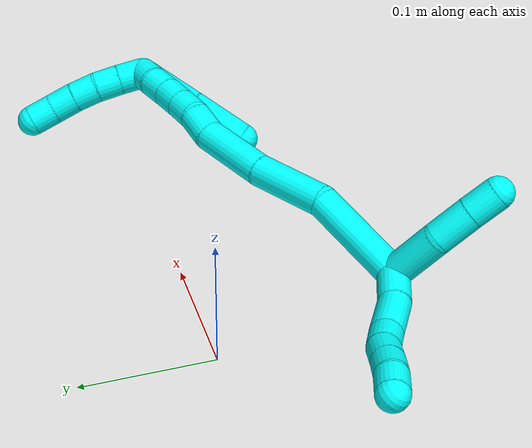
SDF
<sdf version="1.7">
 <world name="default">
  <model name="3">
   <static>0</static>
   <link name="3">
    <collision name="collision-cylinder-e_1_2_8">
     <pose>-0.015247 -0.001448 -0.000379 1.82695 -1.47293 -1.73109</pose>
     <geometry><cylinder><radius>0.0125</radius><length>0.03064</length></cylinder></geometry>
     <surface>
      <friction><ode><mu>1.16</mu><mu2>1.16</mu2><slip1>0</slip1><slip2>0</slip2></ode></friction>
      <contact><ode><kp>1e+06</kp><kd>1</kd><max_vel>0</max_vel><min_depth>0.001</min_depth></ode></contact>
     </surface>
    </collision>
    <visual name="visual-cylinder-e_1_2_8">
     <pose>-0.015247 -0.001448 -0.000379 1.82695 -1.47293 -1.73109</pose>
     <geometry><cylinder><radius>0.0125</radius><length>0.03064</length></cylinder></geometry>
     <material><ambient>0.003922 1 0.996078 1</ambient></material>
    </visual>
    <collision name="collision-cylinder-e_2_8_9">
     <pose>-0.048238 -8.5e-05 -0.001263 -1.74837 -1.41118 1.58901</pose>
     <geometry><cylinder><radius>0.0125</radius><length>0.035945</length></cylinder></geometry>
     <surface>
      <friction><ode><mu>1.16</mu><mu2>1.16</mu2><slip1>0</slip1><slip2>0</slip2></ode></friction>
      <contact><ode><kp>1e+06</kp><kd>1</kd><max_vel>0</max_vel><min_depth>0.001</min_depth></ode></contact>
     </surface>
    </collision>
    <visual name="visual-cylinder-e_2_8_9">
     <pose>-0.048238 -8.5e-05 -0.001263 -1.74837 -1.41118 1.58901</pose>
     <geometry><cylinder><radius>0.0125</radius><length>0.035945</length></cylinder></geometry>
     <material><ambient>0.003922 1 0.996078 1</ambient></material>
    </visual>
    <collision name="collision-cylinder-e_3_9_10">
     <pose>-0.076235 0.004785 -0.000273 -0.942749 -1.32768 0.75881</pose>
     <geometry><cylinder><radius>0.0125</radius><length>0.021128</length></cylinder></geometry>
     <surface>
      <friction><ode><mu>1.16</mu><mu2>1.16</mu2><slip1>0</slip1><slip2>0</slip2></ode></friction>
      <contact><ode><kp>1e+06</kp><kd>1</kd><max_vel>0</max_vel><min_depth>0.001</min_depth></ode></contact>
     </surface>
    </collision>
    <visual name="visual-cylinder-e_3_9_10">
     <pose>-0.076235 0.004785 -0.000273 -0.942749 -1.32768 0.75881</pose>
     <geometry><cylinder><radius>0.0125</radius><length>0.021128</length></cylinder></geometry>
     <material><ambient>0.003922 1 0.996078 1</ambient></material>
    </visual>
    <collision name="collision-cylinder-e_4_10_11">
     <pose>-0.096224 0.007307 0.004733 -0.131348 -1.22178 0.092043</pose>
     <geometry><cylinder><radius>0.0125</radius><length>0.02072</length></cylinder></geometry>
     <surface>
      <friction><ode><mu>1.16</mu><mu2>1.16</mu2><slip1>0</slip1><slip2>0</slip2></ode></friction>
      <contact><ode><kp>1e+06</kp><kd>1</kd><max_vel>0</max_vel><min_depth>0.001</min_depth></ode></contact>
     </surface>
    </collision>
    <visual name="visual-cylinder-e_4_10_11">
     <pose>-0.096224 0.007307 0.004733 -0.131348 -1.22178 0.092043</pose>
     <geometry><cylinder><radius>0.0125</radius><length>0.02072</length></cylinder></geometry>
     <material><ambient>0.003922 1 0.996078 1</ambient></material>
    </visual>
    <collision name="collision-cylinder-e_5_11_12">
     <pose>-0.115831 0.008532 0.011513 -0.228827 -1.24316 0.164256</pose>
     <geometry><cylinder><radius>0.0125</radius><length>0.020854</length></cylinder></geometry>
     <surface>
      <friction><ode><mu>1.16</mu><mu2>1.16</mu2><slip1>0</slip1><slip2>0</slip2></ode></friction>
      <contact><ode><kp>1e+06</kp><kd>1</kd><max_vel>0</max_vel><min_depth>0.001</min_depth></ode></contact>
     </surface>
    </collision>
    <visual name="visual-cylinder-e_5_11_12">
     <pose>-0.115831 0.008532 0.011513 -0.228827 -1.24316 0.164256</pose>
     <geometry><cylinder><radius>0.0125</radius><length>0.020854</length></cylinder></geometry>
     <material><ambient>0.003922 1 0.996078 1</ambient></material>
    </visual>
    <collision name="collision-cylinder-e_6_12_6">
     <pose>-0.13596 0.009511 0.016203 -0.152105 -1.43152 0.132331</pose>
     <geometry><cylinder><radius>0.0125</radius><length>0.020713</length></cylinder></geometry>
     <surface>
      <friction><ode><mu>1.16</mu><mu2>1.16</mu2><slip1>0</slip1><slip2>0</slip2></ode></friction>
      <contact><ode><kp>1e+06</kp><kd>1</kd><max_vel>0</max_vel><min_depth>0.001</min_depth></ode></contact>
     </surface>
    </collision>
    <visual name="visual-cylinder-e_6_12_6">
     <pose>-0.13596 0.009511 0.016203 -0.152105 -1.43152 0.132331</pose>
     <geometry><cylinder><radius>0.0125</radius><length>0.020713</length></cylinder></geometry>
     <material><ambient>0.003922 1 0.996078 1</ambient></material>
    </visual>
    <collision name="collision-cylinder-e_1_2_13">
     <pose>0.000148 -0.001979 0.022681 0.087043 0.006502 0.000283</pose>
     <geometry><cylinder><radius>0.0125</radius><length>0.045536</length></cylinder></geometry>
     <surface>
      <friction><ode><mu>1.16</mu><mu2>1.16</mu2><slip1>0</slip1><slip2>0</slip2></ode></friction>
      <contact><ode><kp>1e+06</kp><kd>1</kd><max_vel>0</max_vel><min_depth>0.001</min_depth></ode></contact>
     </surface>
    </collision>
    <visual name="visual-cylinder-e_1_2_13">
     <pose>0.000148 -0.001979 0.022681 0.087043 0.006502 0.000283</pose>
     <geometry><cylinder><radius>0.0125</radius><length>0.045536</length></cylinder></geometry>
     <material><ambient>0.003922 1 0.996078 1</ambient></material>
    </visual>
    <collision name="collision-cylinder-e_2_13_14">
     <pose>0.004242 -0.007627 0.059653 0.251253 0.261345 0.033192</pose>
     <geometry><cylinder><radius>0.0125</radius><length>0.030545</length></cylinder></geometry>
     <surface>
      <friction><ode><mu>1.16</mu><mu2>1.16</mu2><slip1>0</slip1><slip2>0</slip2></ode></friction>
      <contact><ode><kp>1e+06</kp><kd>1</kd><max_vel>0</max_vel><min_depth>0.001</min_depth></ode></contact>
     </surface>
    </collision>
    <visual name="visual-cylinder-e_2_13_14">
     <pose>0.004242 -0.007627 0.059653 0.251253 0.261345 0.033192</pose>
     <geometry><cylinder><radius>0.0125</radius><length>0.030545</length></cylinder></geometry>
     <material><ambient>0.003922 1 0.996078 1</ambient></material>
    </visual>
    <collision name="collision-cylinder-e_3_14_5">
     <pose>0.011434 -0.01458 0.084976 0.289465 0.274808 0.040302</pose>
     <geometry><cylinder><radius>0.0125</radius><length>0.023919</length></cylinder></geometry>
     <surface>
      <friction><ode><mu>1.16</mu><mu2>1.16</mu2><slip1>0</slip1><slip2>0</slip2></ode></friction>
      <contact><ode><kp>1e+06</kp><kd>1</kd><max_vel>0</max_vel><min_depth>0.001</min_depth></ode></contact>
     </surface>
    </collision>
    <visual name="visual-cylinder-e_3_14_5">
     <pose>0.011434 -0.01458 0.084976 0.289465 0.274808 0.040302</pose>
     <geometry><cylinder><radius>0.0125</radius><length>0.023919</length></cylinder></geometry>
     <material><ambient>0.003922 1 0.996078 1</ambient></material>
    </visual>
    <collision name="collision-cylinder-e_1_2_15">
     <pose>0.02499 0.029644 -0.006351 -1.78185 0.68938 -0.835853</pose>
     <geometry><cylinder><radius>0.0125</radius><length>0.078579</length></cylinder></geometry>
     <surface>
      <friction><ode><mu>1.16</mu><mu2>1.16</mu2><slip1>0</slip1><slip2>0</slip2></ode></friction>
      <contact><ode><kp>1e+06</kp><kd>1</kd><max_vel>0</max_vel><min_depth>0.001</min_depth></ode></contact>
     </surface>
    </collision>
    <visual name="visual-cylinder-e_1_2_15">
     <pose>0.02499 0.029644 -0.006351 -1.78185 0.68938 -0.835853</pose>
     <geometry><cylinder><radius>0.0125</radius><length>0.078579</length></cylinder></geometry>
     <material><ambient>0.003922 1 0.996078 1</ambient></material>
    </visual>
    <collision name="collision-cylinder-e_2_15_16">
     <pose>0.066782 0.079636 -0.027091 -2.18631 0.593213 -1.06673</pose>
     <geometry><cylinder><radius>0.0125</radius><length>0.06011</length></cylinder></geometry>
     <surface>
      <friction><ode><mu>1.16</mu><mu2>1.16</mu2><slip1>0</slip1><slip2>0</slip2></ode></friction>
      <contact><ode><kp>1e+06</kp><kd>1</kd><max_vel>0</max_vel><min_depth>0.001</min_depth></ode></contact>
     </surface>
    </collision>
    <visual name="visual-cylinder-e_2_15_16">
     <pose>0.066782 0.079636 -0.027091 -2.18631 0.593213 -1.06673</pose>
     <geometry><cylinder><radius>0.0125</radius><length>0.06011</length></cylinder></geometry>
     <material><ambient>0.003922 1 0.996078 1</ambient></material>
    </visual>
    <collision name="collision-cylinder-e_3_16_17">
     <pose>0.102678 0.118675 -0.05277 -2.11417 0.718467 -1.17446</pose>
     <geometry><cylinder><radius>0.0125</radius><length>0.058018</length></cylinder></geometry>
     <surface>
      <friction><ode><mu>1.16</mu><mu2>1.16</mu2><slip1>0</slip1><slip2>0</slip2></ode></friction>
      <contact><ode><kp>1e+06</kp><kd>1</kd><max_vel>0</max_vel><min_depth>0.001</min_depth></ode></contact>
     </surface>
    </collision>
    <visual name="visual-cylinder-e_3_16_17">
     <pose>0.102678 0.118675 -0.05277 -2.11417 0.718467 -1.17446</pose>
     <geometry><cylinder><radius>0.0125</radius><length>0.058018</length></cylinder></geometry>
     <material><ambient>0.003922 1 0.996078 1</ambient></material>
    </visual>
    <collision name="collision-cylinder-e_4_17_18">
     <pose>0.130404 0.144774 -0.06565 -1.78209 0.850482 -1.02145</pose>
     <geometry><cylinder><radius>0.0125</radius><length>0.022967</length></cylinder></geometry>
     <surface>
      <friction><ode><mu>1.16</mu><mu2>1.16</mu2><slip1>0</slip1><slip2>0</slip2></ode></friction>
      <contact><ode><kp>1e+06</kp><kd>1</kd><max_vel>0</max_vel><min_depth>0.001</min_depth></ode></contact>
     </surface>
    </collision>
    <visual name="visual-cylinder-e_4_17_18">
     <pose>0.130404 0.144774 -0.06565 -1.78209 0.850482 -1.02145</pose>
     <geometry><cylinder><radius>0.0125</radius><length>0.022967</length></cylinder></geometry>
     <material><ambient>0.003922 1 0.996078 1</ambient></material>
    </visual>
    <collision name="collision-cylinder-e_5_18_19">
     <pose>0.146863 0.157185 -0.071002 -2.21563 0.896156 -1.53309</pose>
     <geometry><cylinder><radius>0.0125</radius><length>0.020049</length></cylinder></geometry>
     <surface>
      <friction><ode><mu>1.16</mu><mu2>1.16</mu2><slip1>0</slip1><slip2>0</slip2></ode></friction>
      <contact><ode><kp>1e+06</kp><kd>1</kd><max_vel>0</max_vel><min_depth>0.001</min_depth></ode></contact>
     </surface>
    </collision>
    <visual name="visual-cylinder-e_5_18_19">
     <pose>0.146863 0.157185 -0.071002 -2.21563 0.896156 -1.53309</pose>
     <geometry><cylinder><radius>0.0125</radius><length>0.020049</length></cylinder></geometry>
     <material><ambient>0.003922 1 0.996078 1</ambient></material>
    </visual>
    <collision name="collision-cylinder-e_6_19_20">
     <pose>0.162394 0.167426 -0.078699 -2.21499 0.866108 -1.4934</pose>
     <geometry><cylinder><radius>0.0125</radius><length>0.02022</length></cylinder></geometry>
     <surface>
      <friction><ode><mu>1.16</mu><mu2>1.16</mu2><slip1>0</slip1><slip2>0</slip2></ode></friction>
      <contact><ode><kp>1e+06</kp><kd>1</kd><max_vel>0</max_vel><min_depth>0.001</min_depth></ode></contact>
     </surface>
    </collision>
    <visual name="visual-cylinder-e_6_19_20">
     <pose>0.162394 0.167426 -0.078699 -2.21499 0.866108 -1.4934</pose>
     <geometry><cylinder><radius>0.0125</radius><length>0.02022</length></cylinder></geometry>
     <material><ambient>0.003922 1 0.996078 1</ambient></material>
    </visual>
    <collision name="collision-cylinder-e_7_20_21">
     <pose>0.177441 0.178168 -0.086621 -2.19777 0.82397 -1.41619</pose>
     <geometry><cylinder><radius>0.0125</radius><length>0.020017</length></cylinder></geometry>
     <surface>
      <friction><ode><mu>1.16</mu><mu2>1.16</mu2><slip1>0</slip1><slip2>0</slip2></ode></friction>
      <contact><ode><kp>1e+06</kp><kd>1</kd><max_vel>0</max_vel><min_depth>0.001</min_depth></ode></contact>
     </surface>
    </collision>
    <visual name="visual-cylinder-e_7_20_21">
     <pose>0.177441 0.178168 -0.086621 -2.19777 0.82397 -1.41619</pose>
     <geometry><cylinder><radius>0.0125</radius><length>0.020017</length></cylinder></geometry>
     <material><ambient>0.003922 1 0.996078 1</ambient></material>
    </visual>
    <collision name="collision-cylinder-e_8_21_1">
     <pose>0.192888 0.187574 -0.09503 -2.41869 0.941847 -1.86414</pose>
     <geometry><cylinder><radius>0.0125</radius><length>0.02004</length></cylinder></geometry>
     <surface>
      <friction><ode><mu>1.16</mu><mu2>1.16</mu2><slip1>0</slip1><slip2>0</slip2></ode></friction>
      <contact><ode><kp>1e+06</kp><kd>1</kd><max_vel>0</max_vel><min_depth>0.001</min_depth></ode></contact>
     </surface>
    </collision>
    <visual name="visual-cylinder-e_8_21_1">
     <pose>0.192888 0.187574 -0.09503 -2.41869 0.941847 -1.86414</pose>
     <geometry><cylinder><radius>0.0125</radius><length>0.02004</length></cylinder></geometry>
     <material><ambient>0.003922 1 0.996078 1</ambient></material>
    </visual>
    <collision name="collision-cylinder-e_1_1_22">
     <pose>0.192116 0.168276 -0.094184 1.34756 -0.357086 -0.286205</pose>
     <geometry><cylinder><radius>0.0125</radius><length>0.050778</length></cylinder></geometry>
     <surface>
      <friction><ode><mu>1.16</mu><mu2>1.16</mu2><slip1>0</slip1><slip2>0</slip2></ode></friction>
      <contact><ode><kp>1e+06</kp><kd>1</kd><max_vel>0</max_vel><min_depth>0.001</min_depth></ode></contact>
     </surface>
    </collision>
    <visual name="visual-cylinder-e_1_1_22">
     <pose>0.192116 0.168276 -0.094184 1.34756 -0.357086 -0.286205</pose>
     <geometry><cylinder><radius>0.0125</radius><length>0.050778</length></cylinder></geometry>
     <material><ambient>0.003922 1 0.996078 1</ambient></material>
    </visual>
    <collision name="collision-cylinder-e_2_22_4">
     <pose>0.174515 0.122621 -0.083901 1.35098 -0.362461 -0.291554</pose>
     <geometry><cylinder><radius>0.0125</radius><length>0.049222</length></cylinder></geometry>
     <surface>
      <friction><ode><mu>1.16</mu><mu2>1.16</mu2><slip1>0</slip1><slip2>0</slip2></ode></friction>
      <contact><ode><kp>1e+06</kp><kd>1</kd><max_vel>0</max_vel><min_depth>0.001</min_depth></ode></contact>
     </surface>
    </collision>
    <visual name="visual-cylinder-e_2_22_4">
     <pose>0.174515 0.122621 -0.083901 1.35098 -0.362461 -0.291554</pose>
     <geometry><cylinder><radius>0.0125</radius><length>0.049222</length></cylinder></geometry>
     <material><ambient>0.003922 1 0.996078 1</ambient></material>
    </visual>
    <collision name="collision-cylinder-e_1_1_23">
     <pose>0.197985 0.197971 -0.106433 -2.39216 -0.30532 0.745789</pose>
     <geometry><cylinder><radius>0.0125</radius><length>0.02</length></cylinder></geometry>
     <surface>
      <friction><ode><mu>1.16</mu><mu2>1.16</mu2><slip1>0</slip1><slip2>0</slip2></ode></friction>
      <contact><ode><kp>1e+06</kp><kd>1</kd><max_vel>0</max_vel><min_depth>0.001</min_depth></ode></contact>
     </surface>
    </collision>
    <visual name="visual-cylinder-e_1_1_23">
     <pose>0.197985 0.197971 -0.106433 -2.39216 -0.30532 0.745789</pose>
     <geometry><cylinder><radius>0.0125</radius><length>0.02</length></cylinder></geometry>
     <material><ambient>0.003922 1 0.996078 1</ambient></material>
    </visual>
    <collision name="collision-cylinder-e_2_23_24">
     <pose>0.191724 0.210699 -0.120527 -2.42216 -0.33151 0.837083</pose>
     <geometry><cylinder><radius>0.0125</radius><length>0.02</length></cylinder></geometry>
     <surface>
      <friction><ode><mu>1.16</mu><mu2>1.16</mu2><slip1>0</slip1><slip2>0</slip2></ode></friction>
      <contact><ode><kp>1e+06</kp><kd>1</kd><max_vel>0</max_vel><min_depth>0.001</min_depth></ode></contact>
     </surface>
    </collision>
    <visual name="visual-cylinder-e_2_23_24">
     <pose>0.191724 0.210699 -0.120527 -2.42216 -0.33151 0.837083</pose>
     <geometry><cylinder><radius>0.0125</radius><length>0.02</length></cylinder></geometry>
     <material><ambient>0.003922 1 0.996078 1</ambient></material>
    </visual>
    <collision name="collision-cylinder-e_3_24_25">
     <pose>0.185436 0.222124 -0.135628 -2.56505 -0.308228 0.965129</pose>
     <geometry><cylinder><radius>0.0125</radius><length>0.02</length></cylinder></geometry>
     <surface>
      <friction><ode><mu>1.16</mu><mu2>1.16</mu2><slip1>0</slip1><slip2>0</slip2></ode></friction>
      <contact><ode><kp>1e+06</kp><kd>1</kd><max_vel>0</max_vel><min_depth>0.001</min_depth></ode></contact>
     </surface>
    </collision>
    <visual name="visual-cylinder-e_3_24_25">
     <pose>0.185436 0.222124 -0.135628 -2.56505 -0.308228 0.965129</pose>
     <geometry><cylinder><radius>0.0125</radius><length>0.02</length></cylinder></geometry>
     <material><ambient>0.003922 1 0.996078 1</ambient></material>
    </visual>
    <collision name="collision-cylinder-e_4_25_26">
     <pose>0.179138 0.231835 -0.15192 -2.64346 -0.332467 1.16627</pose>
     <geometry><cylinder><radius>0.0125</radius><length>0.02</length></cylinder></geometry>
     <surface>
      <friction><ode><mu>1.16</mu><mu2>1.16</mu2><slip1>0</slip1><slip2>0</slip2></ode></friction>
      <contact><ode><kp>1e+06</kp><kd>1</kd><max_vel>0</max_vel><min_depth>0.001</min_depth></ode></contact>
     </surface>
    </collision>
    <visual name="visual-cylinder-e_4_25_26">
     <pose>0.179138 0.231835 -0.15192 -2.64346 -0.332467 1.16627</pose>
     <geometry><cylinder><radius>0.0125</radius><length>0.02</length></cylinder></geometry>
     <material><ambient>0.003922 1 0.996078 1</ambient></material>
    </visual>
    <collision name="collision-cylinder-e_5_26_3">
     <pose>0.171849 0.241069 -0.168068 -2.60002 -0.414317 1.29606</pose>
     <geometry><cylinder><radius>0.0125</radius><length>0.02</length></cylinder></geometry>
     <surface>
      <friction><ode><mu>1.16</mu><mu2>1.16</mu2><slip1>0</slip1><slip2>0</slip2></ode></friction>
      <contact><ode><kp>1e+06</kp><kd>1</kd><max_vel>0</max_vel><min_depth>0.001</min_depth></ode></contact>
     </surface>
    </collision>
    <visual name="visual-cylinder-e_5_26_3">
     <pose>0.171849 0.241069 -0.168068 -2.60002 -0.414317 1.29606</pose>
     <geometry><cylinder><radius>0.0125</radius><length>0.02</length></cylinder></geometry>
     <material><ambient>0.003922 1 0.996078 1</ambient></material>
    </visual>
    <collision name="collision-sphere-3">
     <pose>0.167823 0.245788 -0.175912 0 -0 0</pose>
     <geometry><sphere><radius>0.0125</radius></sphere></geometry>
     <surface>
      <friction><ode><mu>1.16</mu><mu2>1.16</mu2><slip1>0</slip1><slip2>0</slip2></ode></friction>
      <contact><ode><kp>1e+06</kp><kd>1</kd><max_vel>0</max_vel><min_depth>0.001</min_depth></ode></contact>
     </surface>
    </collision>
    <visual name="visual-sphere-3">
     <pose>0.167823 0.245788 -0.175912 0 -0 0</pose>
     <geometry><sphere><radius>0.0125</radius></sphere></geometry>
     <material><ambient>0.003922 1 0.996078 1</ambient></material>
    </visual>
    <collision name="collision-sphere-26">
     <pose>0.175875 0.236351 -0.160224 0 -0 0</pose>
     <geometry><sphere><radius>0.0125</radius></sphere></geometry>
     <surface>
      <friction><ode><mu>1.16</mu><mu2>1.16</mu2><slip1>0</slip1><slip2>0</slip2></ode></friction>
      <contact><ode><kp>1e+06</kp><kd>1</kd><max_vel>0</max_vel><min_depth>0.001</min_depth></ode></contact>
     </surface>
    </collision>
    <visual name="visual-sphere-26">
     <pose>0.175875 0.236351 -0.160224 0 -0 0</pose>
     <geometry><sphere><radius>0.0125</radius></sphere></geometry>
     <material><ambient>0.003922 1 0.996078 1</ambient></material>
    </visual>
    <collision name="collision-sphere-25">
     <pose>0.182402 0.227318 -0.143616 0 -0 0</pose>
     <geometry><sphere><radius>0.0125</radius></sphere></geometry>
     <surface>
      <friction><ode><mu>1.16</mu><mu2>1.16</mu2><slip1>0</slip1><slip2>0</slip2></ode></friction>
      <contact><ode><kp>1e+06</kp><kd>1</kd><max_vel>0</max_vel><min_depth>0.001</min_depth></ode></contact>
     </surface>
    </collision>
    <visual name="visual-sphere-25">
     <pose>0.182402 0.227318 -0.143616 0 -0 0</pose>
     <geometry><sphere><radius>0.0125</radius></sphere></geometry>
     <material><ambient>0.003922 1 0.996078 1</ambient></material>
    </visual>
    <collision name="collision-sphere-24">
     <pose>0.188469 0.21693 -0.12764 0 -0 0</pose>
     <geometry><sphere><radius>0.0125</radius></sphere></geometry>
     <surface>
      <friction><ode><mu>1.16</mu><mu2>1.16</mu2><slip1>0</slip1><slip2>0</slip2></ode></friction>
      <contact><ode><kp>1e+06</kp><kd>1</kd><max_vel>0</max_vel><min_depth>0.001</min_depth></ode></contact>
     </surface>
    </collision>
    <visual name="visual-sphere-24">
     <pose>0.188469 0.21693 -0.12764 0 -0 0</pose>
     <geometry><sphere><radius>0.0125</radius></sphere></geometry>
     <material><ambient>0.003922 1 0.996078 1</ambient></material>
    </visual>
    <collision name="collision-sphere-23">
     <pose>0.194979 0.204468 -0.113415 0 -0 0</pose>
     <geometry><sphere><radius>0.0125</radius></sphere></geometry>
     <surface>
      <friction><ode><mu>1.16</mu><mu2>1.16</mu2><slip1>0</slip1><slip2>0</slip2></ode></friction>
      <contact><ode><kp>1e+06</kp><kd>1</kd><max_vel>0</max_vel><min_depth>0.001</min_depth></ode></contact>
     </surface>
    </collision>
    <visual name="visual-sphere-23">
     <pose>0.194979 0.204468 -0.113415 0 -0 0</pose>
     <geometry><sphere><radius>0.0125</radius></sphere></geometry>
     <material><ambient>0.003922 1 0.996078 1</ambient></material>
    </visual>
    <collision name="collision-sphere-4">
     <pose>0.165789 0.100163 -0.078883 0 -0 0</pose>
     <geometry><sphere><radius>0.0125</radius></sphere></geometry>
     <surface>
      <friction><ode><mu>1.16</mu><mu2>1.16</mu2><slip1>0</slip1><slip2>0</slip2></ode></friction>
      <contact><ode><kp>1e+06</kp><kd>1</kd><max_vel>0</max_vel><min_depth>0.001</min_depth></ode></contact>
     </surface>
    </collision>
    <visual name="visual-sphere-4">
     <pose>0.165789 0.100163 -0.078883 0 -0 0</pose>
     <geometry><sphere><radius>0.0125</radius></sphere></geometry>
     <material><ambient>0.003922 1 0.996078 1</ambient></material>
    </visual>
    <collision name="collision-sphere-22">
     <pose>0.183242 0.145079 -0.088918 0 -0 0</pose>
     <geometry><sphere><radius>0.0125</radius></sphere></geometry>
     <surface>
      <friction><ode><mu>1.16</mu><mu2>1.16</mu2><slip1>0</slip1><slip2>0</slip2></ode></friction>
      <contact><ode><kp>1e+06</kp><kd>1</kd><max_vel>0</max_vel><min_depth>0.001</min_depth></ode></contact>
     </surface>
    </collision>
    <visual name="visual-sphere-22">
     <pose>0.183242 0.145079 -0.088918 0 -0 0</pose>
     <geometry><sphere><radius>0.0125</radius></sphere></geometry>
     <material><ambient>0.003922 1 0.996078 1</ambient></material>
    </visual>
    <collision name="collision-sphere-1">
     <pose>0.200991 0.191474 -0.099451 0 -0 0</pose>
     <geometry><sphere><radius>0.0125</radius></sphere></geometry>
     <surface>
      <friction><ode><mu>1.16</mu><mu2>1.16</mu2><slip1>0</slip1><slip2>0</slip2></ode></friction>
      <contact><ode><kp>1e+06</kp><kd>1</kd><max_vel>0</max_vel><min_depth>0.001</min_depth></ode></contact>
     </surface>
    </collision>
    <visual name="visual-sphere-1">
     <pose>0.200991 0.191474 -0.099451 0 -0 0</pose>
     <geometry><sphere><radius>0.0125</radius></sphere></geometry>
     <material><ambient>0.003922 1 0.996078 1</ambient></material>
    </visual>
    <collision name="collision-sphere-21">
     <pose>0.184785 0.183674 -0.09061 0 -0 0</pose>
     <geometry><sphere><radius>0.0125</radius></sphere></geometry>
     <surface>
      <friction><ode><mu>1.16</mu><mu2>1.16</mu2><slip1>0</slip1><slip2>0</slip2></ode></friction>
      <contact><ode><kp>1e+06</kp><kd>1</kd><max_vel>0</max_vel><min_depth>0.001</min_depth></ode></contact>
     </surface>
    </collision>
    <visual name="visual-sphere-21">
     <pose>0.184785 0.183674 -0.09061 0 -0 0</pose>
     <geometry><sphere><radius>0.0125</radius></sphere></geometry>
     <material><ambient>0.003922 1 0.996078 1</ambient></material>
    </visual>
    <collision name="collision-sphere-12">
     <pose>-0.125704 0.009293 0.014782 0 -0 0</pose>
     <geometry><sphere><radius>0.0125</radius></sphere></geometry>
     <surface>
      <friction><ode><mu>1.16</mu><mu2>1.16</mu2><slip1>0</slip1><slip2>0</slip2></ode></friction>
      <contact><ode><kp>1e+06</kp><kd>1</kd><max_vel>0</max_vel><min_depth>0.001</min_depth></ode></contact>
     </surface>
    </collision>
    <visual name="visual-sphere-12">
     <pose>-0.125704 0.009293 0.014782 0 -0 0</pose>
     <geometry><sphere><radius>0.0125</radius></sphere></geometry>
     <material><ambient>0.003922 1 0.996078 1</ambient></material>
    </visual>
    <collision name="collision-sphere-11">
     <pose>-0.105959 0.007771 0.008245 0 -0 0</pose>
     <geometry><sphere><radius>0.0125</radius></sphere></geometry>
     <surface>
      <friction><ode><mu>1.16</mu><mu2>1.16</mu2><slip1>0</slip1><slip2>0</slip2></ode></friction>
      <contact><ode><kp>1e+06</kp><kd>1</kd><max_vel>0</max_vel><min_depth>0.001</min_depth></ode></contact>
     </surface>
    </collision>
    <visual name="visual-sphere-11">
     <pose>-0.105959 0.007771 0.008245 0 -0 0</pose>
     <geometry><sphere><radius>0.0125</radius></sphere></geometry>
     <material><ambient>0.003922 1 0.996078 1</ambient></material>
    </visual>
    <collision name="collision-sphere-10">
     <pose>-0.086488 0.006843 0.001221 0 -0 0</pose>
     <geometry><sphere><radius>0.0125</radius></sphere></geometry>
     <surface>
      <friction><ode><mu>1.16</mu><mu2>1.16</mu2><slip1>0</slip1><slip2>0</slip2></ode></friction>
      <contact><ode><kp>1e+06</kp><kd>1</kd><max_vel>0</max_vel><min_depth>0.001</min_depth></ode></contact>
     </surface>
    </collision>
    <visual name="visual-sphere-10">
     <pose>-0.086488 0.006843 0.001221 0 -0 0</pose>
     <geometry><sphere><radius>0.0125</radius></sphere></geometry>
     <material><ambient>0.003922 1 0.996078 1</ambient></material>
    </visual>
    <collision name="collision-sphere-9">
     <pose>-0.065982 0.002727 -0.001768 0 -0 0</pose>
     <geometry><sphere><radius>0.0125</radius></sphere></geometry>
     <surface>
      <friction><ode><mu>1.16</mu><mu2>1.16</mu2><slip1>0</slip1><slip2>0</slip2></ode></friction>
      <contact><ode><kp>1e+06</kp><kd>1</kd><max_vel>0</max_vel><min_depth>0.001</min_depth></ode></contact>
     </surface>
    </collision>
    <visual name="visual-sphere-9">
     <pose>-0.065982 0.002727 -0.001768 0 -0 0</pose>
     <geometry><sphere><radius>0.0125</radius></sphere></geometry>
     <material><ambient>0.003922 1 0.996078 1</ambient></material>
    </visual>
    <collision name="collision-sphere-2">
     <geometry><sphere><radius>0.0125</radius></sphere></geometry>
     <surface>
      <friction><ode><mu>1.16</mu><mu2>1.16</mu2><slip1>0</slip1><slip2>0</slip2></ode></friction>
      <contact><ode><kp>1e+06</kp><kd>1</kd><max_vel>0</max_vel><min_depth>0.001</min_depth></ode></contact>
     </surface>
    </collision>
    <visual name="visual-sphere-2">
     <geometry><sphere><radius>0.0125</radius></sphere></geometry>
     <material><ambient>0.003922 1 0.996078 1</ambient></material>
    </visual>
    <collision name="collision-sphere-19">
     <pose>0.154692 0.162189 -0.074766 0 -0 0</pose>
     <geometry><sphere><radius>0.0125</radius></sphere></geometry>
     <surface>
      <friction><ode><mu>1.16</mu><mu2>1.16</mu2><slip1>0</slip1><slip2>0</slip2></ode></friction>
      <contact><ode><kp>1e+06</kp><kd>1</kd><max_vel>0</max_vel><min_depth>0.001</min_depth></ode></contact>
     </surface>
    </collision>
    <visual name="visual-sphere-19">
     <pose>0.154692 0.162189 -0.074766 0 -0 0</pose>
     <geometry><sphere><radius>0.0125</radius></sphere></geometry>
     <material><ambient>0.003922 1 0.996078 1</ambient></material>
    </visual>
    <collision name="collision-sphere-8">
     <pose>-0.030494 -0.002896 -0.000758 0 -0 0</pose>
     <geometry><sphere><radius>0.0125</radius></sphere></geometry>
     <surface>
      <friction><ode><mu>1.16</mu><mu2>1.16</mu2><slip1>0</slip1><slip2>0</slip2></ode></friction>
      <contact><ode><kp>1e+06</kp><kd>1</kd><max_vel>0</max_vel><min_depth>0.001</min_depth></ode></contact>
     </surface>
    </collision>
    <visual name="visual-sphere-8">
     <pose>-0.030494 -0.002896 -0.000758 0 -0 0</pose>
     <geometry><sphere><radius>0.0125</radius></sphere></geometry>
     <material><ambient>0.003922 1 0.996078 1</ambient></material>
    </visual>
    <collision name="collision-sphere-6">
     <pose>-0.146216 0.009729 0.017624 0 -0 0</pose>
     <geometry><sphere><radius>0.0125</radius></sphere></geometry>
     <surface>
      <friction><ode><mu>1.16</mu><mu2>1.16</mu2><slip1>0</slip1><slip2>0</slip2></ode></friction>
      <contact><ode><kp>1e+06</kp><kd>1</kd><max_vel>0</max_vel><min_depth>0.001</min_depth></ode></contact>
     </surface>
    </collision>
    <visual name="visual-sphere-6">
     <pose>-0.146216 0.009729 0.017624 0 -0 0</pose>
     <geometry><sphere><radius>0.0125</radius></sphere></geometry>
     <material><ambient>0.003922 1 0.996078 1</ambient></material>
    </visual>
    <collision name="collision-sphere-13">
     <pose>0.000296 -0.003959 0.045363 0 -0 0</pose>
     <geometry><sphere><radius>0.0125</radius></sphere></geometry>
     <surface>
      <friction><ode><mu>1.16</mu><mu2>1.16</mu2><slip1>0</slip1><slip2>0</slip2></ode></friction>
      <contact><ode><kp>1e+06</kp><kd>1</kd><max_vel>0</max_vel><min_depth>0.001</min_depth></ode></contact>
     </surface>
    </collision>
    <visual name="visual-sphere-13">
     <pose>0.000296 -0.003959 0.045363 0 -0 0</pose>
     <geometry><sphere><radius>0.0125</radius></sphere></geometry>
     <material><ambient>0.003922 1 0.996078 1</ambient></material>
    </visual>
    <collision name="collision-sphere-14">
     <pose>0.008188 -0.011295 0.073944 0 -0 0</pose>
     <geometry><sphere><radius>0.0125</radius></sphere></geometry>
     <surface>
      <friction><ode><mu>1.16</mu><mu2>1.16</mu2><slip1>0</slip1><slip2>0</slip2></ode></friction>
      <contact><ode><kp>1e+06</kp><kd>1</kd><max_vel>0</max_vel><min_depth>0.001</min_depth></ode></contact>
     </surface>
    </collision>
    <visual name="visual-sphere-14">
     <pose>0.008188 -0.011295 0.073944 0 -0 0</pose>
     <geometry><sphere><radius>0.0125</radius></sphere></geometry>
     <material><ambient>0.003922 1 0.996078 1</ambient></material>
    </visual>
    <collision name="collision-sphere-5">
     <pose>0.014679 -0.017866 0.096008 0 -0 0</pose>
     <geometry><sphere><radius>0.0125</radius></sphere></geometry>
     <surface>
      <friction><ode><mu>1.16</mu><mu2>1.16</mu2><slip1>0</slip1><slip2>0</slip2></ode></friction>
      <contact><ode><kp>1e+06</kp><kd>1</kd><max_vel>0</max_vel><min_depth>0.001</min_depth></ode></contact>
     </surface>
    </collision>
    <visual name="visual-sphere-5">
     <pose>0.014679 -0.017866 0.096008 0 -0 0</pose>
     <geometry><sphere><radius>0.0125</radius></sphere></geometry>
     <material><ambient>0.003922 1 0.996078 1</ambient></material>
    </visual>
    <collision name="collision-sphere-15">
     <pose>0.049981 0.059289 -0.012702 0 -0 0</pose>
     <geometry><sphere><radius>0.0125</radius></sphere></geometry>
     <surface>
      <friction><ode><mu>1.16</mu><mu2>1.16</mu2><slip1>0</slip1><slip2>0</slip2></ode></friction>
      <contact><ode><kp>1e+06</kp><kd>1</kd><max_vel>0</max_vel><min_depth>0.001</min_depth></ode></contact>
     </surface>
    </collision>
    <visual name="visual-sphere-15">
     <pose>0.049981 0.059289 -0.012702 0 -0 0</pose>
     <geometry><sphere><radius>0.0125</radius></sphere></geometry>
     <material><ambient>0.003922 1 0.996078 1</ambient></material>
    </visual>
    <collision name="collision-sphere-16">
     <pose>0.083584 0.099982 -0.041479 0 -0 0</pose>
     <geometry><sphere><radius>0.0125</radius></sphere></geometry>
     <surface>
      <friction><ode><mu>1.16</mu><mu2>1.16</mu2><slip1>0</slip1><slip2>0</slip2></ode></friction>
      <contact><ode><kp>1e+06</kp><kd>1</kd><max_vel>0</max_vel><min_depth>0.001</min_depth></ode></contact>
     </surface>
    </collision>
    <visual name="visual-sphere-16">
     <pose>0.083584 0.099982 -0.041479 0 -0 0</pose>
     <geometry><sphere><radius>0.0125</radius></sphere></geometry>
     <material><ambient>0.003922 1 0.996078 1</ambient></material>
    </visual>
    <collision name="collision-sphere-17">
     <pose>0.121773 0.137368 -0.064061 0 -0 0</pose>
     <geometry><sphere><radius>0.0125</radius></sphere></geometry>
     <surface>
      <friction><ode><mu>1.16</mu><mu2>1.16</mu2><slip1>0</slip1><slip2>0</slip2></ode></friction>
      <contact><ode><kp>1e+06</kp><kd>1</kd><max_vel>0</max_vel><min_depth>0.001</min_depth></ode></contact>
     </surface>
    </collision>
    <visual name="visual-sphere-17">
     <pose>0.121773 0.137368 -0.064061 0 -0 0</pose>
     <geometry><sphere><radius>0.0125</radius></sphere></geometry>
     <material><ambient>0.003922 1 0.996078 1</ambient></material>
    </visual>
    <collision name="collision-sphere-18">
     <pose>0.139035 0.152181 -0.067238 0 -0 0</pose>
     <geometry><sphere><radius>0.0125</radius></sphere></geometry>
     <surface>
      <friction><ode><mu>1.16</mu><mu2>1.16</mu2><slip1>0</slip1><slip2>0</slip2></ode></friction>
      <contact><ode><kp>1e+06</kp><kd>1</kd><max_vel>0</max_vel><min_depth>0.001</min_depth></ode></contact>
     </surface>
    </collision>
    <visual name="visual-sphere-18">
     <pose>0.139035 0.152181 -0.067238 0 -0 0</pose>
     <geometry><sphere><radius>0.0125</radius></sphere></geometry>
     <material><ambient>0.003922 1 0.996078 1</ambient></material>
    </visual>
    <collision name="collision-sphere-20">
     <pose>0.170096 0.172663 -0.082632 0 -0 0</pose>
     <geometry><sphere><radius>0.0125</radius></sphere></geometry>
     <surface>
      <friction><ode><mu>1.16</mu><mu2>1.16</mu2><slip1>0</slip1><slip2>0</slip2></ode></friction>
      <contact><ode><kp>1e+06</kp><kd>1</kd><max_vel>0</max_vel><min_depth>0.001</min_depth></ode></contact>
     </surface>
    </collision>
    <visual name="visual-sphere-20">
     <pose>0.170096 0.172663 -0.082632 0 -0 0</pose>
     <geometry><sphere><radius>0.0125</radius></sphere></geometry>
     <material><ambient>0.003922 1 0.996078 1</ambient></material>
    </visual>
    <inertial>
     <pose>0.073088 0.090335 -0.040554 0 -0 0</pose>
     <mass>0.75</mass>
     <inertia><ixx>2.2e-05</ixx><ixy>0</ixy><ixz>0</ixz><iyy>1.7e-05</iyy><iyz>0</iyz><izz>-7.9e-05</izz></inertia>
    </inertial>
   </link>
   <pose>0.038211 -0.145119 0.014368 0.619864 -0.01896 -0.384783</pose>
  </model>
 </world>
</sdf>
